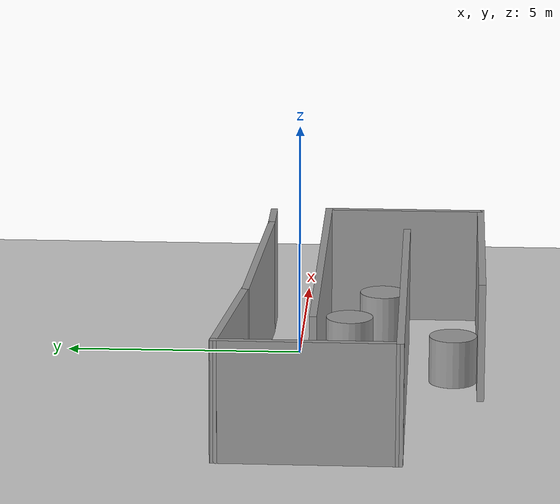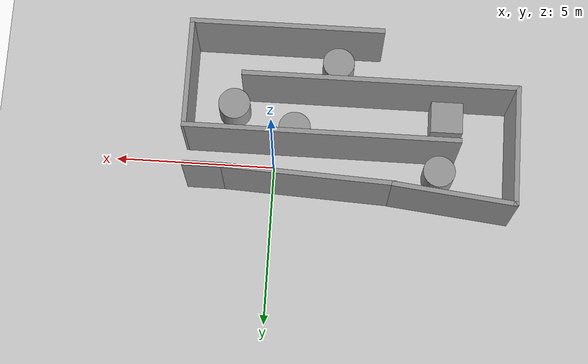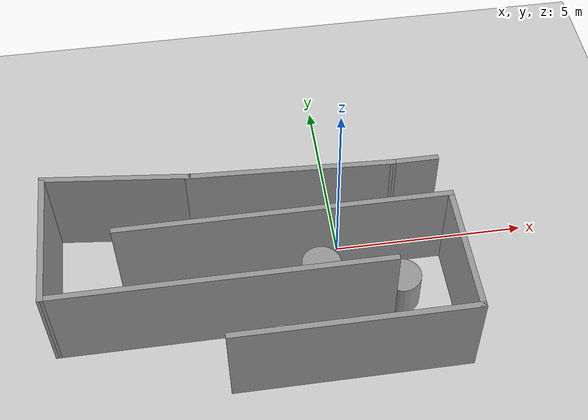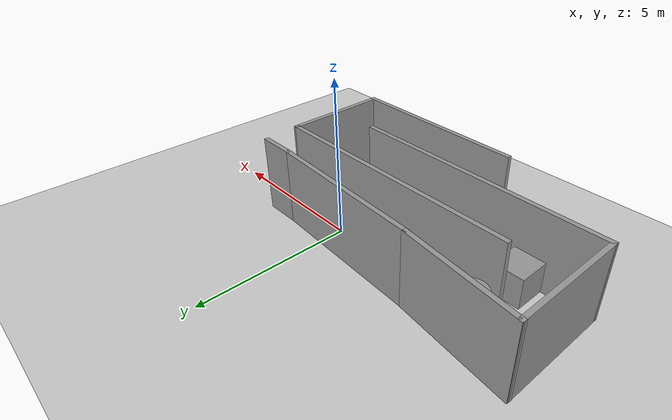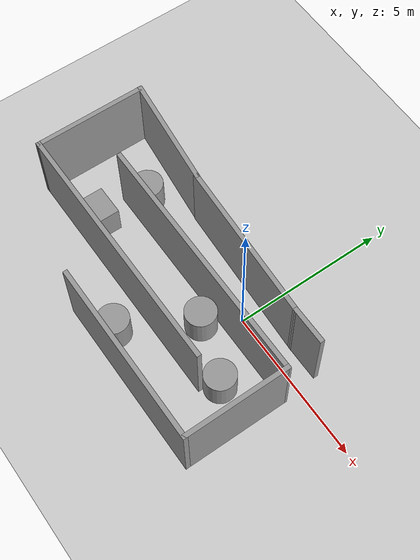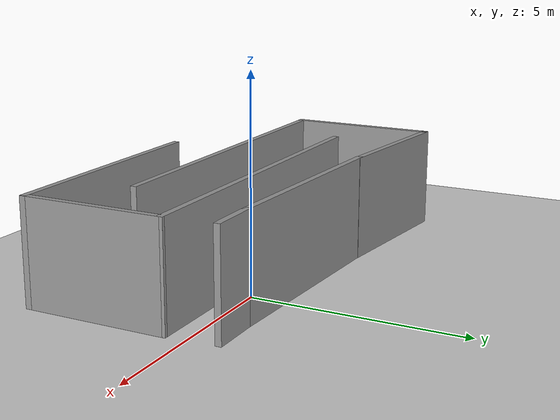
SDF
<sdf version="1.6">
 <world name="default">
  <light name="sun" type="directional">
   <pose>0 0 10 0 -0 0</pose>
   <diffuse>0.8 0.8 0.8 1</diffuse>
   <specular>0.2 0.2 0.2 1</specular>
   <attenuation>
    <range>1000</range>
    <constant>0.9</constant>
    <linear>0.01</linear>
    <quadratic>0.001</quadratic>
   </attenuation>
   <direction>-0.5 0.1 -0.9</direction>
  </light>
  <model name="ground_plane">
   <static>1</static>
   <link name="link">
    <collision name="collision">
     <geometry><plane><normal>0 0 1</normal><size>100 100</size></plane></geometry>
     <surface>
      <contact><collide_bitmask>65535</collide_bitmask></contact>
      <friction><ode><mu>100</mu><mu2>50</mu2></ode></friction>
     </surface>
    </collision>
    <visual name="visual">
     <cast_shadows>0</cast_shadows>
     <geometry><plane><normal>0 0 1</normal><size>100 100</size></plane></geometry>
     <material>
      <script><uri>file://media/materials/scripts/gazebo.material</uri><name>Gazebo/Grey</name></script>
     </material>
    </visual>
   </link>
  </model>
  <gravity>0 0 -9.8</gravity>
  <magnetic_field>6e-06 2.3e-05 -4.2e-05</magnetic_field>
  <atmosphere type="adiabatic"/>
  <physics name="default_physics" default="0" type="ode">
   <max_step_size>0.001</max_step_size>
   <real_time_factor>1</real_time_factor>
   <real_time_update_rate>1000</real_time_update_rate>
  </physics>
  <scene><ambient>0.4 0.4 0.4 1</ambient><background>0.7 0.7 0.7 1</background><shadows>1</shadows></scene>
  <spherical_coordinates>
   <surface_model>EARTH_WGS84</surface_model>
   <latitude_deg>0</latitude_deg>
   <longitude_deg>0</longitude_deg>
   <elevation>0</elevation>
   <heading_deg>0</heading_deg>
  </spherical_coordinates>
  <model name="test1">
   <pose>-2.30505 -1.25612 0 0 -0 0</pose>
   <link name="Wall_10">
    <collision name="Wall_10_Collision">
     <geometry><box><size>3.80197 0.15 2.5</size></box></geometry>
     <pose>0 0 1.25 0 -0 0</pose>
    </collision>
    <visual name="Wall_10_Visual">
     <pose>0 0 1.25 0 -0 0</pose>
     <geometry><box><size>3.80197 0.15 2.5</size></box></geometry>
     <material>
      <script><uri>file://media/materials/scripts/gazebo.material</uri><name>Gazebo/Grey</name></script>
      <ambient>1 1 1 1</ambient>
     </material>
     <meta><layer>0</layer></meta>
    </visual>
    <pose>-3.19995 2.40612 0 0 -0 3.03184</pose>
   </link>
   <link name="Wall_11">
    <collision name="Wall_11_Collision">
     <geometry><box><size>3.76001 0.15 2.5</size></box></geometry>
     <pose>0 0 1.25 0 -0 0</pose>
    </collision>
    <visual name="Wall_11_Visual">
     <pose>0 0 1.25 0 -0 0</pose>
     <geometry><box><size>3.76001 0.15 2.5</size></box></geometry>
     <material>
      <script><uri>file://media/materials/scripts/gazebo.material</uri><name>Gazebo/Grey</name></script>
      <ambient>1 1 1 1</ambient>
     </material>
     <meta><layer>0</layer></meta>
    </visual>
    <pose>-5.01995 0.791118 0 0 -0 -1.57357</pose>
   </link>
   <link name="Wall_12">
    <collision name="Wall_12_Collision">
     <geometry><box><size>8.5 0.15 2.5</size></box></geometry>
     <pose>0 0 1.25 0 -0 0</pose>
    </collision>
    <visual name="Wall_12_Visual">
     <pose>0 0 1.25 0 -0 0</pose>
     <geometry><box><size>8.5 0.15 2.5</size></box></geometry>
     <material>
      <script><uri>file://media/materials/scripts/gazebo.material</uri><name>Gazebo/Grey</name></script>
      <ambient>1 1 1 1</ambient>
     </material>
     <meta><layer>0</layer></meta>
    </visual>
    <pose>-0.849946 -1.01388 0 0 -0 0</pose>
   </link>
   <link name="Wall_14">
    <collision name="Wall_14_Collision">
     <geometry><box><size>3.5 0.15 2.5</size></box></geometry>
     <pose>0 0 1.25 0 -0 0</pose>
    </collision>
    <visual name="Wall_14_Visual">
     <pose>0 0 1.25 0 -0 0</pose>
     <geometry><box><size>3.5 0.15 2.5</size></box></geometry>
     <material>
      <script><uri>file://media/materials/scripts/gazebo.material</uri><name>Gazebo/Grey</name></script>
      <ambient>1 1 1 1</ambient>
     </material>
     <meta><layer>0</layer></meta>
    </visual>
    <pose>5.02505 -0.938882 0 0 -0 -1.5708</pose>
   </link>
   <link name="Wall_15">
    <collision name="Wall_15_Collision">
     <geometry><box><size>6 0.15 2.5</size></box></geometry>
     <pose>0 0 1.25 0 -0 0</pose>
    </collision>
    <visual name="Wall_15_Visual">
     <pose>0 0 1.25 0 -0 0</pose>
     <geometry><box><size>6 0.15 2.5</size></box></geometry>
     <material>
      <script><uri>file://media/materials/scripts/gazebo.material</uri><name>Gazebo/Grey</name></script>
      <ambient>1 1 1 1</ambient>
     </material>
     <meta><layer>0</layer></meta>
    </visual>
    <pose>2.10005 -2.61388 0 0 -0 3.14159</pose>
   </link>
   <link name="Wall_3">
    <collision name="Wall_3_Collision">
     <geometry><box><size>8.46002 0.15 2.5</size></box></geometry>
     <pose>0 0 1.25 0 -0 0</pose>
    </collision>
    <visual name="Wall_3_Visual">
     <pose>0 0 1.25 0 -0 0</pose>
     <geometry><box><size>8.46002 0.15 2.5</size></box></geometry>
     <material>
      <script><uri>file://media/materials/scripts/gazebo.material</uri><name>Gazebo/Grey</name></script>
      <ambient>1 1 1 1</ambient>
     </material>
     <meta><layer>0</layer></meta>
    </visual>
    <pose>0.870054 0.741118 0 0 -0 -0.001203</pose>
   </link>
   <link name="Wall_7">
    <collision name="Wall_7_Collision">
     <geometry><box><size>1.25 0.15 2.5</size></box></geometry>
     <pose>0 0 1.25 0 -0 0</pose>
    </collision>
    <visual name="Wall_7_Visual">
     <pose>0 0 1.25 0 -0 0</pose>
     <geometry><box><size>1.25 0.15 2.5</size></box></geometry>
     <material>
      <script><uri>file://media/materials/scripts/gazebo.material</uri><name>Gazebo/Grey</name></script>
      <ambient>1 1 1 1</ambient>
     </material>
     <meta><layer>0</layer></meta>
    </visual>
    <pose>4.35505 1.94612 0 0 -0 3.14159</pose>
   </link>
   <link name="Wall_8">
    <collision name="Wall_8_Collision">
     <geometry><box><size>5.34602 0.15 2.5</size></box></geometry>
     <pose>0 0 1.25 0 -0 0</pose>
    </collision>
    <visual name="Wall_8_Visual">
     <pose>0 0 1.25 0 -0 0</pose>
     <geometry><box><size>5.34602 0.15 2.5</size></box></geometry>
     <material>
      <script><uri>file://media/materials/scripts/gazebo.material</uri><name>Gazebo/Grey</name></script>
      <ambient>1 1 1 1</ambient>
     </material>
     <meta><layer>0</layer></meta>
    </visual>
    <pose>1.21005 2.07112 0 0 -0 3.09346</pose>
   </link>
   <static>1</static>
  </model>
  <model name="unit_cylinder">
   <pose>-5.15373 0.064482 0.49999 0 -0 0</pose>
   <link name="link">
    <inertial>
     <mass>1</mass>
     <inertia><ixx>0.145833</ixx><ixy>0</ixy><ixz>0</ixz><iyy>0.145833</iyy><iyz>0</iyz><izz>0.125</izz></inertia>
    </inertial>
    <collision name="collision">
     <geometry><cylinder><radius>0.5</radius><length>1</length></cylinder></geometry>
    </collision>
    <visual name="visual">
     <geometry><cylinder><radius>0.5</radius><length>1</length></cylinder></geometry>
     <material>
      <script><name>Gazebo/Grey</name><uri>file://media/materials/scripts/gazebo.material</uri></script>
     </material>
    </visual>
   </link>
  </model>
  <model name="unit_box">
   <pose>-5.32765 -1.69499 0.499995 -1e-05 -0 2e-06</pose>
   <link name="link">
    <inertial>
     <mass>1</mass>
     <inertia>
      <ixx>0.166667</ixx>
      <ixy>0</ixy>
      <ixz>0</ixz>
      <iyy>0.166667</iyy>
      <iyz>0</iyz>
      <izz>0.166667</izz>
     </inertia>
    </inertial>
    <collision name="collision"><geometry><box><size>1 1 1</size></box></geometry></collision>
    <visual name="visual">
     <geometry><box><size>1 1 1</size></box></geometry>
     <material>
      <script><name>Gazebo/Grey</name><uri>file://media/materials/scripts/gazebo.material</uri></script>
     </material>
    </visual>
   </link>
  </model>
  <model name="unit_cylinder_0">
   <pose>-0.586828 -1.09103 0.499998 3e-06 4e-06 -0</pose>
   <link name="link">
    <inertial>
     <mass>1</mass>
     <inertia><ixx>0.145833</ixx><ixy>0</ixy><ixz>0</ixz><iyy>0.145833</iyy><iyz>0</iyz><izz>0.125</izz></inertia>
    </inertial>
    <collision name="collision">
     <geometry><cylinder><radius>0.5</radius><length>1</length></cylinder></geometry>
    </collision>
    <visual name="visual">
     <geometry><cylinder><radius>0.5</radius><length>1</length></cylinder></geometry>
     <material>
      <script><name>Gazebo/Grey</name><uri>file://media/materials/scripts/gazebo.material</uri></script>
     </material>
    </visual>
   </link>
  </model>
  <model name="unit_cylinder_1">
   <pose>-1.85787 -3.29499 0.5 0 -0 0</pose>
   <link name="link">
    <inertial>
     <mass>1</mass>
     <inertia><ixx>0.145833</ixx><ixy>0</ixy><ixz>0</ixz><iyy>0.145833</iyy><iyz>0</iyz><izz>0.125</izz></inertia>
    </inertial>
    <collision name="collision">
     <geometry><cylinder><radius>0.5</radius><length>1</length></cylinder></geometry>
    </collision>
    <visual name="visual">
     <geometry><cylinder><radius>0.5</radius><length>1</length></cylinder></geometry>
     <material>
      <script><name>Gazebo/Grey</name><uri>file://media/materials/scripts/gazebo.material</uri></script>
     </material>
    </visual>
   </link>
  </model>
  <model name="unit_cylinder_2">
   <pose>1.34741 -1.76338 0.49999 0 -0 0</pose>
   <link name="link">
    <inertial>
     <mass>1</mass>
     <inertia><ixx>0.145833</ixx><ixy>0</ixy><ixz>0</ixz><iyy>0.145833</iyy><iyz>0</iyz><izz>0.125</izz></inertia>
    </inertial>
    <collision name="collision">
     <geometry><cylinder><radius>0.5</radius><length>1</length></cylinder></geometry>
    </collision>
    <visual name="visual">
     <geometry><cylinder><radius>0.5</radius><length>1</length></cylinder></geometry>
     <material>
      <script><name>Gazebo/Grey</name><uri>file://media/materials/scripts/gazebo.material</uri></script>
     </material>
    </visual>
   </link>
  </model>
 </world>
</sdf>
